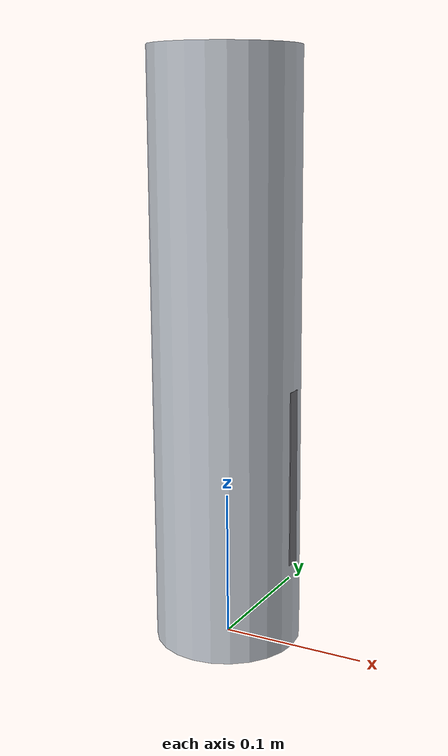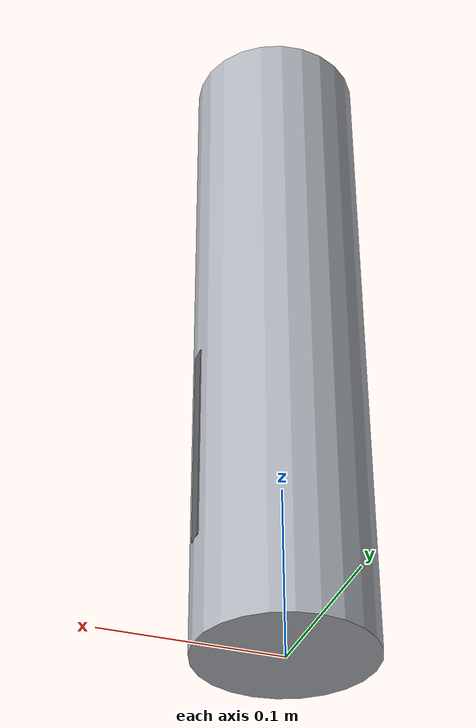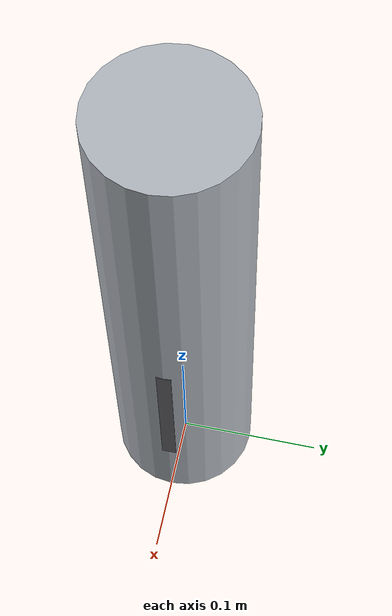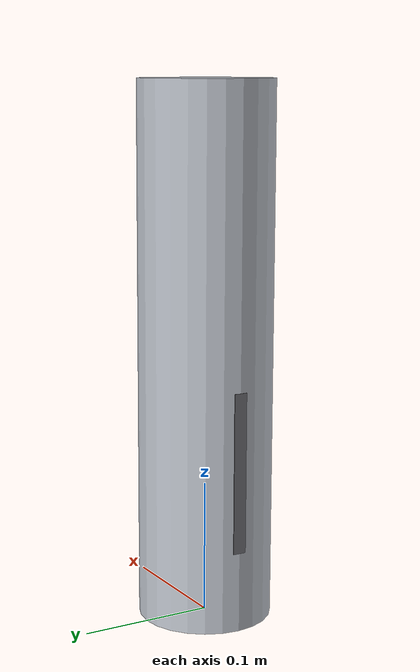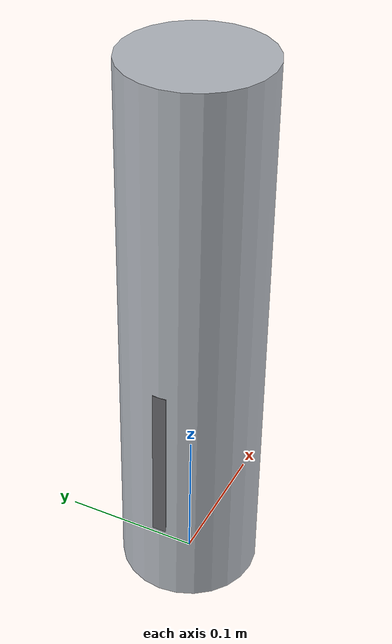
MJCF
<?xml version="1.0" encoding="utf-8"?>
<mujoco model="distillation_column">
  <compiler angle="radian" autolimits="true"/>
  <default>
    <default class="body"><geom contype="1" conaffinity="1"/></default>
  </default>
  <worldbody>
    <body name="base">
      <geom type="cylinder" size="0.05 0.20" pos="0 0 0.20" rgba="0.7 0.72 0.75 1" class="body"/>
      <body name="access_door" pos="-0.05 0 0.12">
        <joint name="access_door_joint" type="hinge" axis="0 0 1" range="0 1.6" damping="0.5" frictionloss="0.3"/>
  <geom type="box" size="0.05 0.005 0.06" pos="0.05 0 0" rgba="0.4 0.4 0.42 1" class="body"/>
      </body>
    </body>
  </worldbody>
</mujoco>
